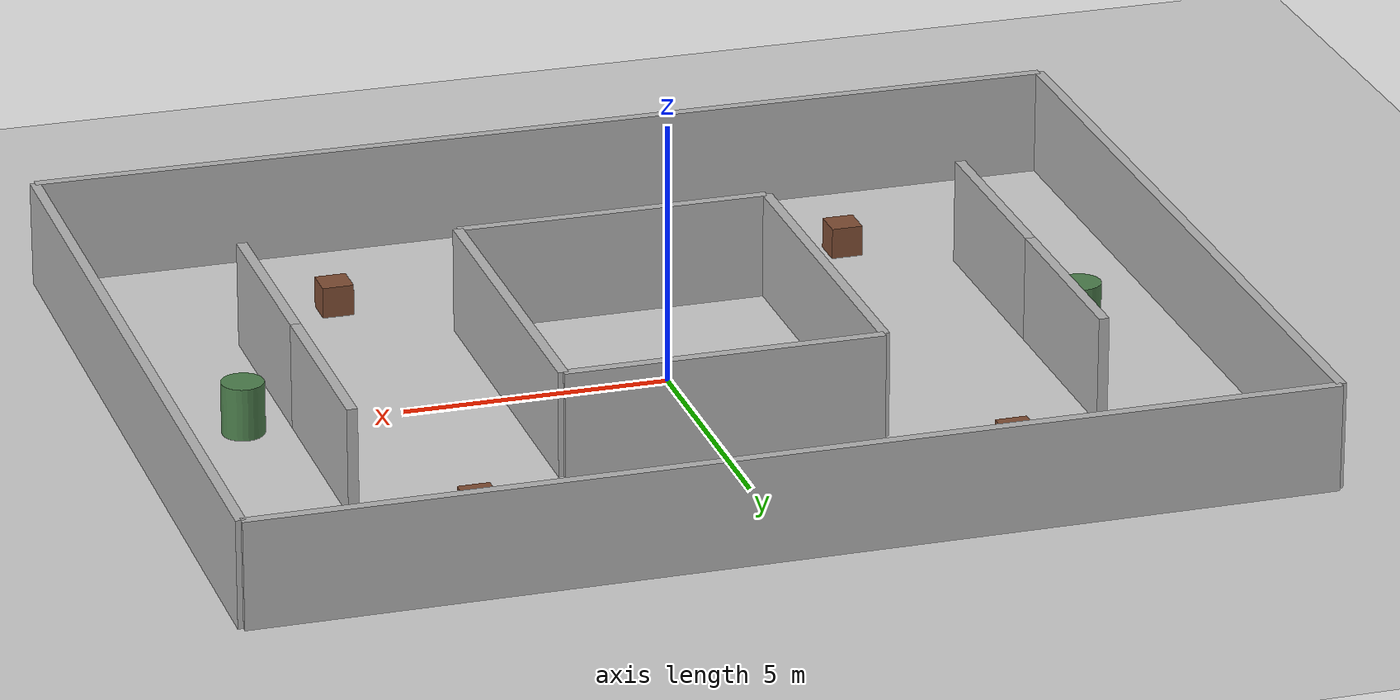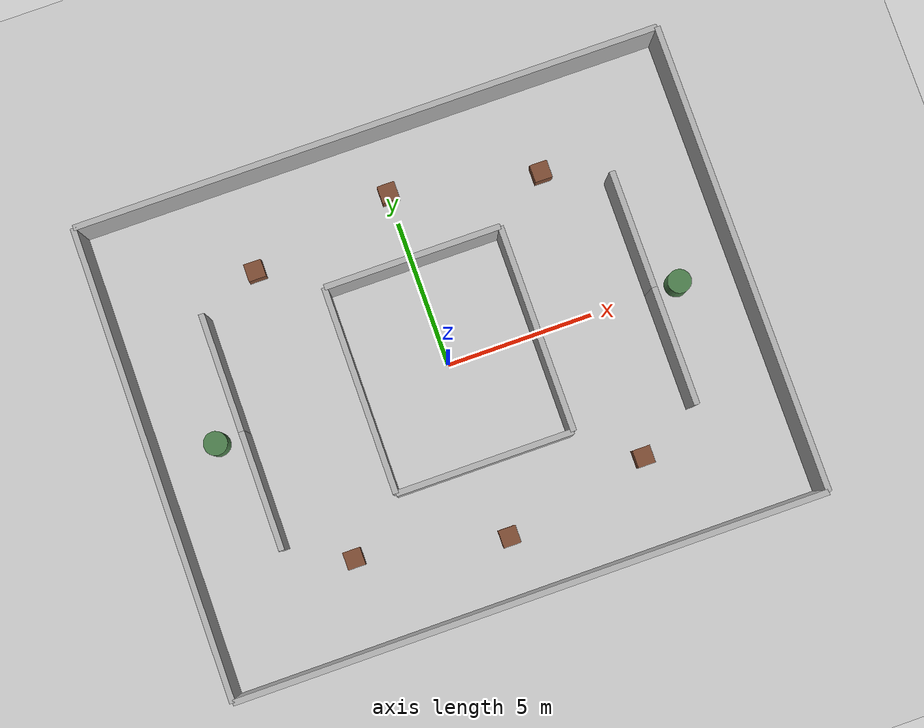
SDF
<?xml version="1.0" ?>
<sdf version="1.6">
  <world name="default">
    <gravity>0 0 -9.8</gravity>
    <physics type="ode">
      <max_step_size>0.002</max_step_size>
      <real_time_update_rate>200</real_time_update_rate>
    </physics>
    <scene>
      <ambient>0.4 0.4 0.4 1</ambient>
      <background>0.7 0.7 0.7 1</background>
      <grid>false</grid>
    </scene>
    <!-- include sun for lighting -->
    <include><uri>model://sun</uri></include>
    <include><uri>model://ground_plane</uri></include>

    <model name="wall_N">
      <static>true</static>
      <pose>0 8 0.75 0 0 0</pose>
      <link name="link">
        <collision name="collision">
          <geometry><box><size>20 0.2 2.5</size></box></geometry>
        </collision>
        <visual name="visual">
          <geometry><box><size>20 0.2 2.5</size></box></geometry>
          <material><ambient>0.7 0.7 0.7 1</ambient></material>
        </visual>
      </link>
    </model>

    <model name="wall_S">
      <static>true</static>
      <pose>0 -8 0.75 0 0 0</pose>
      <link name="link">
        <collision name="collision">
          <geometry><box><size>20 0.2 2.5</size></box></geometry>
        </collision>
        <visual name="visual">
          <geometry><box><size>20 0.2 2.5</size></box></geometry>
          <material><ambient>0.7 0.7 0.7 1</ambient></material>
        </visual>
      </link>
    </model>

    <model name="wall_E">
      <static>true</static>
      <pose>10 0 0.75 0 0 0</pose>
      <link name="link">
        <collision name="collision">
          <geometry><box><size>0.2 16 2.5</size></box></geometry>
        </collision>
        <visual name="visual">
          <geometry><box><size>0.2 16 2.5</size></box></geometry>
          <material><ambient>0.7 0.7 0.7 1</ambient></material>
        </visual>
      </link>
    </model>

    <model name="wall_W">
      <static>true</static>
      <pose>-10 0 0.75 0 0 0</pose>
      <link name="link">
        <collision name="collision">
          <geometry><box><size>0.2 16 2.5</size></box></geometry>
        </collision>
        <visual name="visual">
          <geometry><box><size>0.2 16 2.5</size></box></geometry>
          <material><ambient>0.7 0.7 0.7 1</ambient></material>
        </visual>
      </link>
    </model>

    <model name="wall_div1">
      <static>true</static>
      <pose>-3 0 0.75 0 0 0</pose>
      <link name="link">
        <collision name="collision">
          <geometry><box><size>0.2 7 2.5</size></box></geometry>
        </collision>
        <visual name="visual">
          <geometry><box><size>0.2 7 2.5</size></box></geometry>
          <material><ambient>0.7 0.7 0.7 1</ambient></material>
        </visual>
      </link>
    </model>

    <model name="wall_div2">
      <static>true</static>
      <pose>3 0 0.75 0 0 0</pose>
      <link name="link">
        <collision name="collision">
          <geometry><box><size>0.2 7 2.5</size></box></geometry>
        </collision>
        <visual name="visual">
          <geometry><box><size>0.2 7 2.5</size></box></geometry>
          <material><ambient>0.7 0.7 0.7 1</ambient></material>
        </visual>
      </link>
    </model>

    <model name="wall_div3">
      <static>true</static>
      <pose>0 3.5 0.75 0 0 0</pose>
      <link name="link">
        <collision name="collision">
          <geometry><box><size>6 0.2 2.5</size></box></geometry>
        </collision>
        <visual name="visual">
          <geometry><box><size>6 0.2 2.5</size></box></geometry>
          <material><ambient>0.7 0.7 0.7 1</ambient></material>
        </visual>
      </link>
    </model>

    <model name="wall_div4">
      <static>true</static>
      <pose>0 -3.5 0.75 0 0 0</pose>
      <link name="link">
        <collision name="collision">
          <geometry><box><size>6 0.2 2.5</size></box></geometry>
        </collision>
        <visual name="visual">
          <geometry><box><size>6 0.2 2.5</size></box></geometry>
          <material><ambient>0.7 0.7 0.7 1</ambient></material>
        </visual>
      </link>
    </model>

    <model name="wall_div5">
      <static>true</static>
      <pose>7 2 0.75 0 0 0</pose>
      <link name="link">
        <collision name="collision">
          <geometry><box><size>0.2 4 2.5</size></box></geometry>
        </collision>
        <visual name="visual">
          <geometry><box><size>0.2 4 2.5</size></box></geometry>
          <material><ambient>0.7 0.7 0.7 1</ambient></material>
        </visual>
      </link>
    </model>

    <model name="wall_div6">
      <static>true</static>
      <pose>7 -2 0.75 0 0 0</pose>
      <link name="link">
        <collision name="collision">
          <geometry><box><size>0.2 4 2.5</size></box></geometry>
        </collision>
        <visual name="visual">
          <geometry><box><size>0.2 4 2.5</size></box></geometry>
          <material><ambient>0.7 0.7 0.7 1</ambient></material>
        </visual>
      </link>
    </model>

    <model name="wall_div7">
      <static>true</static>
      <pose>-7 2 0.75 0 0 0</pose>
      <link name="link">
        <collision name="collision">
          <geometry><box><size>0.2 4 2.5</size></box></geometry>
        </collision>
        <visual name="visual">
          <geometry><box><size>0.2 4 2.5</size></box></geometry>
          <material><ambient>0.7 0.7 0.7 1</ambient></material>
        </visual>
      </link>
    </model>

    <model name="wall_div8">
      <static>true</static>
      <pose>-7 -2 0.75 0 0 0</pose>
      <link name="link">
        <collision name="collision">
          <geometry><box><size>0.2 4 2.5</size></box></geometry>
        </collision>
        <visual name="visual">
          <geometry><box><size>0.2 4 2.5</size></box></geometry>
          <material><ambient>0.7 0.7 0.7 1</ambient></material>
        </visual>
      </link>
    </model>

    <model name="box_0">
      <static>true</static>
      <pose>5 5 0.3 0 0 0</pose>
      <link name="link">
        <collision name="collision">
          <geometry><box><size>0.6 0.6 0.6</size></box></geometry>
        </collision>
        <visual name="visual">
          <geometry><box><size>0.6 0.6 0.6</size></box></geometry>
          <material><ambient>0.5 0.3 0.2 1</ambient></material>
        </visual>
      </link>
    </model>

    <model name="box_1">
      <static>true</static>
      <pose>-5 5 0.3 0 0 0</pose>
      <link name="link">
        <collision name="collision">
          <geometry><box><size>0.6 0.6 0.6</size></box></geometry>
        </collision>
        <visual name="visual">
          <geometry><box><size>0.6 0.6 0.6</size></box></geometry>
          <material><ambient>0.5 0.3 0.2 1</ambient></material>
        </visual>
      </link>
    </model>

    <model name="box_2">
      <static>true</static>
      <pose>5 -5 0.3 0 0 0</pose>
      <link name="link">
        <collision name="collision">
          <geometry><box><size>0.6 0.6 0.6</size></box></geometry>
        </collision>
        <visual name="visual">
          <geometry><box><size>0.6 0.6 0.6</size></box></geometry>
          <material><ambient>0.5 0.3 0.2 1</ambient></material>
        </visual>
      </link>
    </model>

    <model name="box_3">
      <static>true</static>
      <pose>-5 -5 0.3 0 0 0</pose>
      <link name="link">
        <collision name="collision">
          <geometry><box><size>0.6 0.6 0.6</size></box></geometry>
        </collision>
        <visual name="visual">
          <geometry><box><size>0.6 0.6 0.6</size></box></geometry>
          <material><ambient>0.5 0.3 0.2 1</ambient></material>
        </visual>
      </link>
    </model>

    <model name="box_4">
      <static>true</static>
      <pose>0 6 0.3 0 0 0</pose>
      <link name="link">
        <collision name="collision">
          <geometry><box><size>0.6 0.6 0.6</size></box></geometry>
        </collision>
        <visual name="visual">
          <geometry><box><size>0.6 0.6 0.6</size></box></geometry>
          <material><ambient>0.5 0.3 0.2 1</ambient></material>
        </visual>
      </link>
    </model>

    <model name="box_5">
      <static>true</static>
      <pose>0 -6 0.3 0 0 0</pose>
      <link name="link">
        <collision name="collision">
          <geometry><box><size>0.6 0.6 0.6</size></box></geometry>
        </collision>
        <visual name="visual">
          <geometry><box><size>0.6 0.6 0.6</size></box></geometry>
          <material><ambient>0.5 0.3 0.2 1</ambient></material>
        </visual>
      </link>
    </model>

    <model name="cyl_0">
      <static>true</static>
      <pose>8 0 0.5 0 0 0</pose>
      <link name="link">
        <collision name="collision">
          <geometry><cylinder><radius>0.4</radius><length>1.0</length></cylinder></geometry>
        </collision>
        <visual name="visual">
          <geometry><cylinder><radius>0.4</radius><length>1.0</length></cylinder></geometry>
          <material><ambient>0.3 0.5 0.3 1</ambient></material>
        </visual>
      </link>
    </model>

    <model name="cyl_1">
      <static>true</static>
      <pose>-8 0 0.5 0 0 0</pose>
      <link name="link">
        <collision name="collision">
          <geometry><cylinder><radius>0.4</radius><length>1.0</length></cylinder></geometry>
        </collision>
        <visual name="visual">
          <geometry><cylinder><radius>0.4</radius><length>1.0</length></cylinder></geometry>
          <material><ambient>0.3 0.5 0.3 1</ambient></material>
        </visual>
      </link>
    </model>
  </world>
</sdf>
